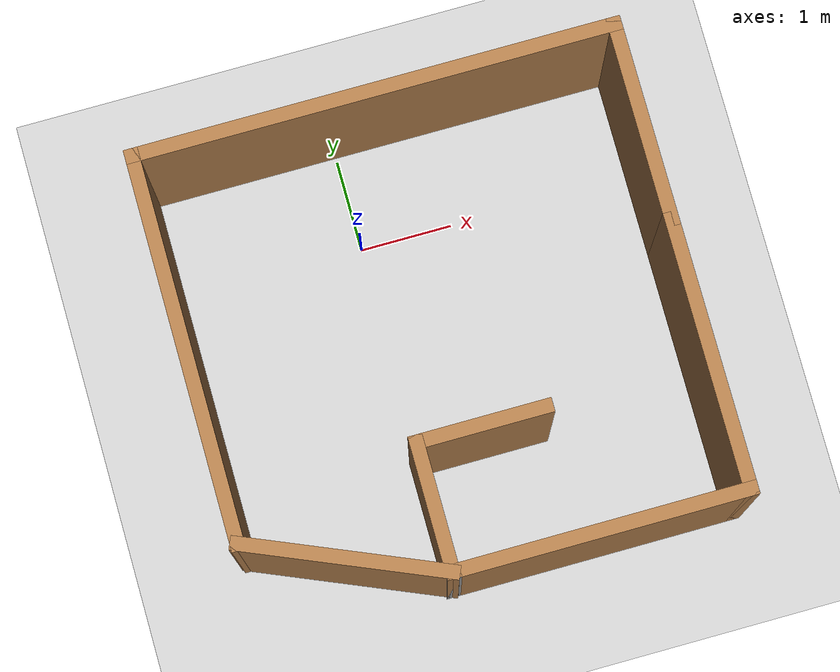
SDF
<sdf version="1.7">
 <world name="default">
  <light name="sun" type="directional">
   <pose>0 0 10 0 -0 0</pose>
   <diffuse>0.8 0.8 0.8 1</diffuse>
   <specular>0.2 0.2 0.2 1</specular>
   <attenuation>
    <range>1000</range>
    <constant>0.9</constant>
    <linear>0.01</linear>
    <quadratic>0.001</quadratic>
   </attenuation>
   <direction>-0.5 0.1 -0.9</direction>
   <spot><inner_angle>0</inner_angle><outer_angle>0</outer_angle><falloff>0</falloff></spot>
  </light>
  <model name="ground_plane">
   <static>1</static>
   <link name="link">
    <collision name="collision">
     <geometry><plane><normal>0 0 1</normal><size>100 100</size></plane></geometry>
     <surface>
      <contact><collide_bitmask>65535</collide_bitmask></contact>
      <friction><ode><mu>100</mu><mu2>50</mu2></ode></friction>
     </surface>
    </collision>
    <visual name="visual">
     <cast_shadows>0</cast_shadows>
     <geometry><plane><normal>0 0 1</normal><size>100 100</size></plane></geometry>
     <material>
      <script><uri>file://media/materials/scripts/gazebo.material</uri><name>Gazebo/Grey</name></script>
     </material>
    </visual>
   </link>
  </model>
  <gravity>0 0 -9.8</gravity>
  <magnetic_field>6e-06 2.3e-05 -4.2e-05</magnetic_field>
  <atmosphere type="adiabatic"/>
  <physics type="ode">
   <max_step_size>0.001</max_step_size>
   <real_time_factor>1</real_time_factor>
   <real_time_update_rate>1000</real_time_update_rate>
  </physics>
  <scene><ambient>0.4 0.4 0.4 1</ambient><background>0.7 0.7 0.7 1</background><shadows>1</shadows></scene>
  <audio><device>default</device></audio>
  <spherical_coordinates>
   <surface_model>EARTH_WGS84</surface_model>
   <latitude_deg>0</latitude_deg>
   <longitude_deg>0</longitude_deg>
   <elevation>0</elevation>
   <heading_deg>0</heading_deg>
  </spherical_coordinates>
  <model name="my_custom_world.world">
   <pose>0.482736 -1.35923 0 0 -0 0</pose>
   <link name="Wall_10">
    <collision name="Wall_10_Collision">
     <geometry><box><size>5.25 0.15 2.5</size></box></geometry>
     <pose>0 0 1.25 0 -0 0</pose>
    </collision>
    <visual name="Wall_10_Visual">
     <pose>0 0 1.25 0 -0 0</pose>
     <geometry><box><size>5.25 0.15 2.5</size></box></geometry>
     <material>
      <script><uri>file://media/materials/scripts/gazebo.material</uri><name>Gazebo/Wood</name></script>
      <ambient>1 1 1 1</ambient>
     </material>
     <meta><layer>0</layer></meta>
    </visual>
    <pose>0.01168 2.48668 0 0 -0 3.14159</pose>
   </link>
   <link name="Wall_11">
    <collision name="Wall_11_Collision">
     <geometry><box><size>4.25 0.15 2.5</size></box></geometry>
     <pose>0 0 1.25 0 -0 0</pose>
    </collision>
    <visual name="Wall_11_Visual">
     <pose>0 0 1.25 0 -0 0</pose>
     <geometry><box><size>4.25 0.15 2.5</size></box></geometry>
     <material>
      <script><uri>file://media/materials/scripts/gazebo.material</uri><name>Gazebo/Wood</name></script>
      <ambient>1 1 1 1</ambient>
     </material>
     <meta><layer>0</layer></meta>
    </visual>
    <pose>-2.53832 0.43668 0 0 -0 -1.5708</pose>
   </link>
   <link name="Wall_13">
    <collision name="Wall_13_Collision">
     <geometry><box><size>2.32313 0.15 2.5</size></box></geometry>
     <pose>0 0 1.25 0 -0 0</pose>
    </collision>
    <visual name="Wall_13_Visual">
     <pose>0 0 1.25 0 -0 0</pose>
     <geometry><box><size>2.32313 0.15 2.5</size></box></geometry>
     <material>
      <script><uri>file://media/materials/scripts/gazebo.material</uri><name>Gazebo/Wood</name></script>
      <ambient>1 1 1 1</ambient>
     </material>
     <meta><layer>0</layer></meta>
    </visual>
    <pose>-1.53832 -2.03832 0 0 -0 -0.401871</pose>
   </link>
   <link name="Wall_14">
    <collision name="Wall_14_Collision">
     <geometry><box><size>1.5 0.15 2.5</size></box></geometry>
     <pose>0 0 1.25 0 -0 0</pose>
    </collision>
    <visual name="Wall_14_Visual">
     <pose>0 0 1.25 0 -0 0</pose>
     <geometry><box><size>1.5 0.15 2.5</size></box></geometry>
     <material>
      <script><uri>file://media/materials/scripts/gazebo.material</uri><name>Gazebo/Wood</name></script>
      <ambient>1 1 1 1</ambient>
     </material>
     <meta><layer>0</layer></meta>
    </visual>
    <pose>-0.53832 -1.78832 0 0 -0 1.5708</pose>
   </link>
   <link name="Wall_15">
    <collision name="Wall_15_Collision">
     <geometry><box><size>1.5 0.15 2.5</size></box></geometry>
     <pose>0 0 1.25 0 -0 0</pose>
    </collision>
    <visual name="Wall_15_Visual">
     <pose>0 0 1.25 0 -0 0</pose>
     <geometry><box><size>1.5 0.15 2.5</size></box></geometry>
     <material>
      <script><uri>file://media/materials/scripts/gazebo.material</uri><name>Gazebo/Wood</name></script>
      <ambient>1 1 1 1</ambient>
     </material>
     <meta><layer>0</layer></meta>
    </visual>
    <pose>0.13668 -1.11332 0 0 -0 0</pose>
   </link>
   <link name="Wall_4">
    <collision name="Wall_4_Collision">
     <geometry><box><size>0.15 0.15 2.5</size></box></geometry>
     <pose>0 0 1.25 0 -0 0</pose>
    </collision>
    <visual name="Wall_4_Visual">
     <pose>0 0 1.25 0 -0 0</pose>
     <geometry><box><size>0.15 0.15 2.5</size></box></geometry>
     <material>
      <script><uri>file://media/materials/scripts/gazebo.material</uri><name>Gazebo/Grey</name></script>
      <ambient>1 1 1 1</ambient>
     </material>
     <meta><layer>0</layer></meta>
    </visual>
    <pose>-0.53832 -2.46332 0 0 -0 0</pose>
   </link>
   <link name="Wall_6">
    <collision name="Wall_6_Collision">
     <geometry><box><size>3.25 0.15 2.5</size></box></geometry>
     <pose>0 0 1.25 0 -0 0</pose>
    </collision>
    <visual name="Wall_6_Visual">
     <pose>0 0 1.25 0 -0 0</pose>
     <geometry><box><size>3.25 0.15 2.5</size></box></geometry>
     <material>
      <script><uri>file://media/materials/scripts/gazebo.material</uri><name>Gazebo/Wood</name></script>
      <ambient>1 1 1 1</ambient>
     </material>
     <meta><layer>0</layer></meta>
    </visual>
    <pose>1.01168 -2.46332 0 0 -0 0</pose>
   </link>
   <link name="Wall_7">
    <collision name="Wall_7_Collision">
     <geometry><box><size>3 0.15 2.5</size></box></geometry>
     <pose>0 0 1.25 0 -0 0</pose>
    </collision>
    <visual name="Wall_7_Visual">
     <pose>0 0 1.25 0 -0 0</pose>
     <geometry><box><size>3 0.15 2.5</size></box></geometry>
     <material>
      <script><uri>file://media/materials/scripts/gazebo.material</uri><name>Gazebo/Wood</name></script>
      <ambient>1 1 1 1</ambient>
     </material>
     <meta><layer>0</layer></meta>
    </visual>
    <pose>2.56168 -1.03832 0 0 -0 1.5708</pose>
   </link>
   <link name="Wall_9">
    <collision name="Wall_9_Collision">
     <geometry><box><size>2.25 0.15 2.5</size></box></geometry>
     <pose>0 0 1.25 0 -0 0</pose>
    </collision>
    <visual name="Wall_9_Visual">
     <pose>0 0 1.25 0 -0 0</pose>
     <geometry><box><size>2.25 0.15 2.5</size></box></geometry>
     <material>
      <script><uri>file://media/materials/scripts/gazebo.material</uri><name>Gazebo/Wood</name></script>
      <ambient>1 1 1 1</ambient>
     </material>
     <meta><layer>0</layer></meta>
    </visual>
    <pose>2.56168 1.43668 0 0 -0 1.5708</pose>
   </link>
   <static>1</static>
  </model>
 </world>
</sdf>
